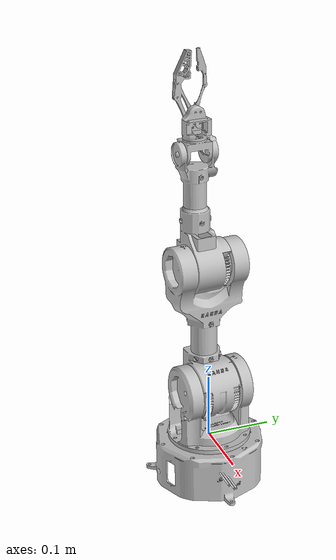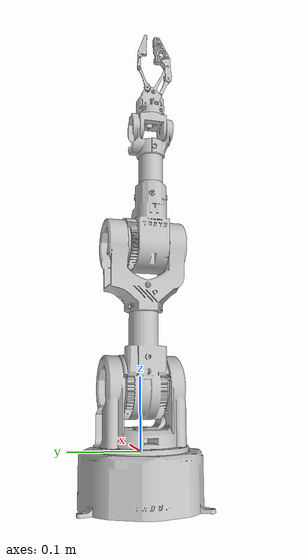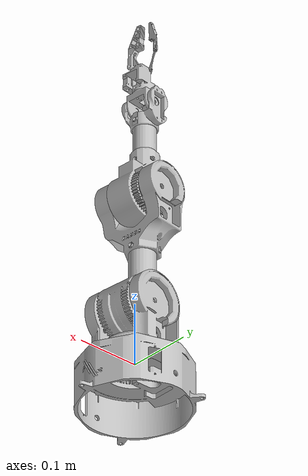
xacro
<?xml version="1.0"?>
<robot xmlns:xacro="http://www.ros.org/wiki/xacro" name="kauda">
  <link name="world"/>

  <link name="base_link"/>

  <joint name="world_joint" type="fixed">
    <parent link="world"/>
    <child link="base_link"/>    <dynamics damping="10.0" friction="1.0"/>
  </joint>

  <link name="base_footprint">
    <inertial>
      <origin xyz="-0.00530925790576836 -3.94116071453926E-06 -0.018307245361305" rpy="0 0 0" />
      <mass
        value="0.377109058292487" />
      <inertia
        ixx="0.00107088440434545"
        ixy="1.10905798168356E-07"
        ixz="1.14163831904201E-05"
        iyy="0.00116271156830369"
        iyz="-9.05276896773614E-08"
        izz="0.00201984908828289" />
    </inertial>
    <visual>
      <origin xyz="0 0 0" rpy="0 0 0" />
      <geometry>
        <mesh filename="package://kauda/meshes/base_footprint.STL" />
      </geometry>
      <material name="">
        <color rgba="0.752941176470588 0.752941176470588 0.752941176470588 1" />
      </material>
    </visual>
    <collision>
      <origin xyz="0 0 0" rpy="0 0 0" />
      <geometry>
        <mesh filename="package://kauda/meshes/base_footprint.STL" />
      </geometry>
    </collision>
  </link>

  <joint name="base_joint" type="fixed">
    <parent link="base_link"/>
    <child link="base_footprint"/>
    <dynamics damping="10.0" friction="1.0"/>
  </joint>

  <link name="link1">
    <inertial>
      <origin xyz="0.00229721462998489 -0.000230609851214751 0.0482498832031781" rpy="0 0 0" />
      <mass value="0.470486507419155" />
      <inertia
        ixx="0.00109023137916716"
        ixy="1.48462873070982E-05"
        ixz="-3.51550938929572E-05"
        iyy="0.000963399988424884"
        iyz="5.36500924620431E-06"
        izz="0.000851399422239088" />
    </inertial>
    <visual>
      <origin xyz="0 0 0" rpy="0 0 0" />
      <geometry>
        <mesh filename="package://kauda/meshes/link1.STL" />
      </geometry>
      <material name="">
        <color rgba="0.752941176470588 0.752941176470588 0.752941176470588 1" />
      </material>
    </visual>
    <collision>
      <origin xyz="0 0 0" rpy="0 0 0" />
      <geometry>
        <mesh filename="package://kauda/meshes/link1.STL" />
      </geometry>
    </collision>
  </link>

  <joint name="joint1" type="revolute">
    <origin xyz="0 0 0" rpy="0 0 0" />
    <parent link="base_footprint" />
    <child link="link1" />
    <axis xyz="0 0 -1" />
    <limit lower="-1.5708" upper="1.5708" effort="0" velocity="0" />
  </joint>

  <link name="link2">
    <inertial>
      <origin xyz="-0.010018047532452 -0.0032833462210182 0.0861794590904751" rpy="0 0 0" />
      <mass value="0.597764887805913" />
      <inertia
        ixx="0.000811203102330621"
        ixy="3.84670753886074E-06"
        ixz="-2.39198660268358E-06"
        iyy="0.000739547758043914"
        iyz="-7.87293376002064E-06"
        izz="0.000616552622984094" />
    </inertial>
    <visual>
      <origin xyz="0 0 0" rpy="0 0 0" />
      <geometry>
        <mesh filename="package://kauda/meshes/link2.STL" />
      </geometry>
      <material name="">
        <color rgba="0.752941176470588 0.752941176470588 0.752941176470588 1" />
      </material>
    </visual>
    <collision>
      <origin xyz="0 0 0" rpy="0 0 0" />
      <geometry>
        <mesh filename="package://kauda/meshes/link2.STL" />
      </geometry>
    </collision>
  </link>

  <joint name="joint2" type="revolute">
    <origin xyz="0.0059659 0.00063891 0.08615" rpy="0 0 0" />
    <parent link="link1" />
    <child link="link2" />
    <axis xyz="-0.10648 0.99431 0" />
    <limit lower="-1.5708" upper="1.5708" effort="0" velocity="0" />
  </joint>

  <link name="link3">
    <inertial>
      <origin xyz="-0.0169011018631835 0.0380839207520736 0.0116356442109422" rpy="0 0 0" />
      <mass value="0.268857504457809" />
      <inertia
        ixx="0.000197411173994711"
        ixy="-5.06366609444836E-06"
        ixz="1.24082418327179E-05"
        iyy="0.000232360787237225"
        iyz="-2.627629940429E-07"
        izz="0.0001779803445574" />
    </inertial>
    <visual>
      <origin xyz="0 0 0" rpy="0 0 0" />
      <geometry>
        <mesh filename="package://kauda/meshes/link3.STL" />
      </geometry>
      <material name="">
        <color rgba="0.752941176470588 0.752941176470588 0.752941176470588 1" />
      </material>
    </visual>
    <collision>
      <origin xyz="0 0 0" rpy="0 0 0" />
      <geometry>
        <mesh filename="package://kauda/meshes/link3.STL" />
      </geometry>
    </collision>
  </link>

  <joint name="joint3" type="revolute">
    <origin xyz="-0.0014911 -0.042422 0.19664" rpy="0 0 0" />
    <parent link="link2" />
    <child link="link3" />
    <axis xyz="-0.10648 0.99431 0" />
    <limit lower="-1.5708" upper="1.5708" effort="0" velocity="0" />
  </joint>

  <link name="link4">
    <inertial>
      <origin xyz="0.000127731718039426 -0.000925010788561428 0.0895037641109863" rpy="0 0 0" />
      <mass value="0.0365664078243449" />
      <inertia
        ixx="2.72405728800808E-05"
        ixy="9.0441219157387E-07"
        ixz="-8.85652493454715E-08"
        iyy="1.88817780992797E-05"
        iyz="8.92970457314301E-07"
        izz="1.79057599567989E-05" />
    </inertial>
    <visual>
      <origin xyz="0 0 0" rpy="0 0 0" />
      <geometry>
        <mesh filename="package://kauda/meshes/link4.STL" />
      </geometry>
      <material name="">
        <color rgba="0.752941176470588 0.752941176470588 0.752941176470588 1" />
      </material>
    </visual>
    <collision>
      <origin xyz="0 0 0" rpy="0 0 0" />
      <geometry>
        <mesh filename="package://kauda/meshes/link4.STL" />
      </geometry>
    </collision>
  </link>

  <joint name="joint4" type="revolute">
    <origin xyz="-0.033191 0.031215 0.05663" rpy="0 0 0" />
    <parent link="link3" />
    <child link="link4" />
    <axis xyz="0 0 1" />
    <limit lower="-1.5708" upper="1.5708" effort="0" velocity="0" />
  </joint>

  <link name="link5">
    <inertial>
      <origin xyz="-0.00237290651034774 0.0221320248227368 0.00766620022500086" rpy="0 0 0" />
      <mass value="0.0249727462641256" />
      <inertia
        ixx="6.86232658161813E-06"
        ixy="2.09116249750625E-07"
        ixz="-1.55862695274545E-08"
        iyy="4.92498141280146E-06"
        iyz="1.4679899460208E-07"
        izz="7.19810856236306E-06" />
    </inertial>
    <visual>
      <origin xyz="0 0 0" rpy="0 0 0" />
      <geometry>
        <mesh filename="package://kauda/meshes/link5.STL" />
      </geometry>
      <material name="">
        <color rgba="0.752941176470588 0.752941176470588 0.752941176470588 1" />
      </material>
    </visual>
    <collision>
      <origin xyz="0 0 0" rpy="0 0 0" />
      <geometry>
        <mesh filename="package://kauda/meshes/link5.STL" />
      </geometry>
    </collision>
  </link>

  <joint name="joint5" type="revolute">
    <origin xyz="0.0023959 -0.022372 0.1184" rpy="0 0 0" />
    <parent link="link4" />
    <child link="link5" />
    <axis xyz="-0.10648 0.99431 0" />
    <limit lower="-1.5708" upper="1.5708" effort="0" velocity="0" />
  </joint>

  <link name="end_effector">
    <inertial>
      <origin xyz="-0.0734713584909865 -0.00431769797661067 -0.00391571033132621" rpy="0 0 0" />
      <mass value="0.0303740016851369" />
      <inertia
        ixx="4.96476260358216E-06"
        ixy="-2.13950973868504E-07"
        ixz="1.15712582705699E-07"
        iyy="4.59166886150046E-06"
        iyz="-1.8601356748186E-07"
        izz="6.06172170169276E-06" />
    </inertial>
    <visual>
      <origin xyz="0 0 0" rpy="0 0 0" />
      <geometry>
        <mesh filename="package://kauda/meshes/end_effector.STL" />
      </geometry>
      <material name="">
        <color rgba="0.752941176470588 0.752941176470588 0.752941176470588 1" />
      </material>
    </visual>
    <collision>
      <origin xyz="0 0 0" rpy="0 0 0" />
      <geometry>
        <mesh filename="package://kauda/meshes/end_effector.STL" />
      </geometry>
    </collision>
  </link>

  <joint name="end_effector_joint" type="fixed">
    <origin xyz="-0.0014444 0.021426 0.12893" rpy="0.0 -1.5708 0.0" />
    <parent link="link5" />
    <child link="end_effector" />
    <axis xyz="0 0 0" />
  </joint>

 <link name="finger">
 <inertial>
      <origin xyz=" -0.00391571033132621 -0.00431769797661067 -0.0734713584909865" rpy="0 0 0" />
      <mass value="0.0103740016851369" />
      <inertia
        ixx="0.00024166666666666667"
        ixy="0.0"
        ixz="0.0"
        iyy="0.00024166666666666667"
        iyz="0.0"
        izz="0.00024166666666666667" />
    </inertial>
	<visual>
    <origin xyz="0 0 0" rpy="0 0 0" />
         <geometry>
          <mesh filename="package://kauda/meshes/finger.stl"/>
         </geometry>
            <material name="">
        <color rgba="0.752941176470588 0.752941176470588 0.752941176470588 1" />
      </material>
        </visual>
        <collision>
        <origin xyz="0 0 0" rpy="0 0 0" />
         <geometry>
          <mesh filename="package://kauda/meshes/finger.stl"/>
         </geometry>
        </collision>
  </link>

<joint name="joint6" type="prismatic">
    <axis xyz="0 1 0"  />
    <origin xyz=" 0.021 0.021426 -0.03893" rpy="0 0 0" />
    <limit effort="1.0" lower="-0.011" upper="0.011" velocity="0.5"/>
    <parent link="end_effector" />
    <child link="finger" />
  </joint>

</robot>
